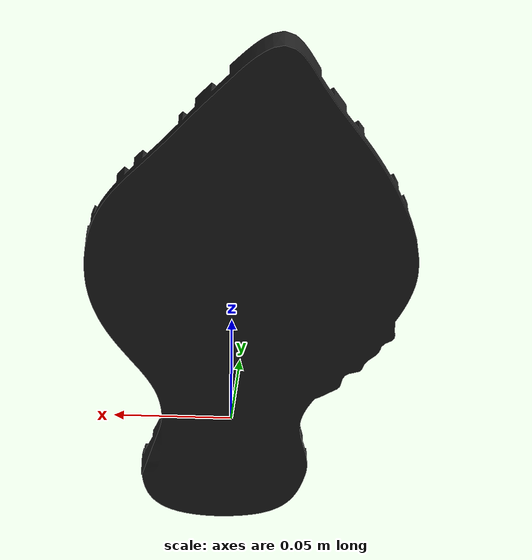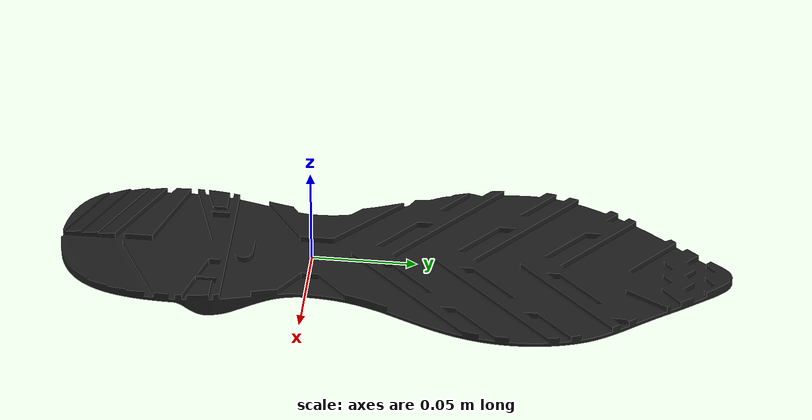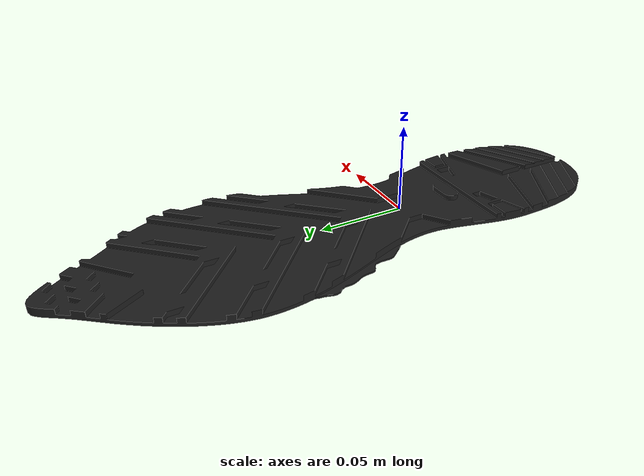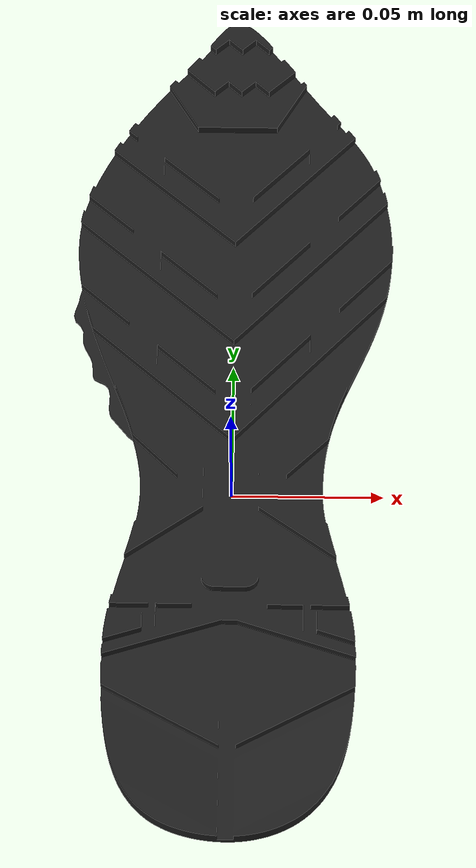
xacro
<?xml version="1.0"?>
<robot xmlns:xacro="http://www.ros.org/wiki/xacro" name="sole" >

<link name="sole_link">
		<inertial>
			<mass value="0.3"/>
			<origin rpy="0 0 0 " xyz="0.0 0.0 0.0" />
			<inertia ixx="0" ixy="0" ixz="0" iyy="0"
				iyz="0"
				izz="0"/>
		</inertial>
		<collision>
						<max_contacts>5</max_contacts>
			<geometry>
						<mesh filename="package://sole/meshes/sole_3.stl" scale="0.001 0.001 0.001" />
			</geometry>
		</collision>
		<visual>
			            <origin rpy=" 0 0 0 " xyz="0 0 0" />
			<geometry>
						<mesh filename="package://sole/meshes/sole_3.stl" scale="0.001 0.001 0.001" />
			</geometry>
		</visual>

		<gazebo>
			<static>true</static>
		</gazebo>
	</link>
  <gazebo reference="sole_link">
    <material>Gazebo/Black</material>
  </gazebo>

<gazebo>
    <static>true</static>
</gazebo>
</robot>
